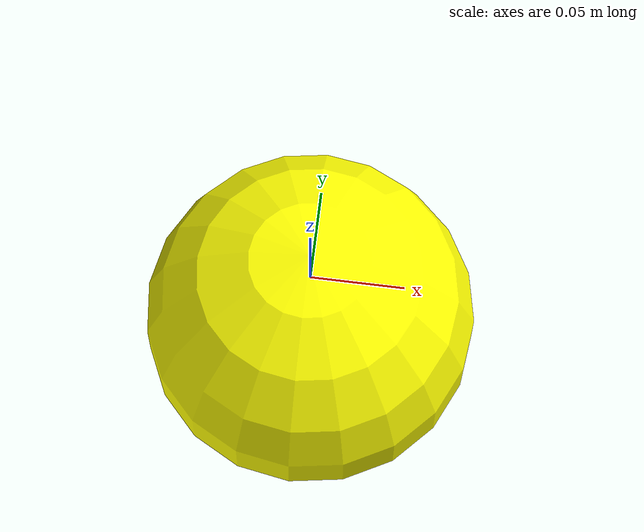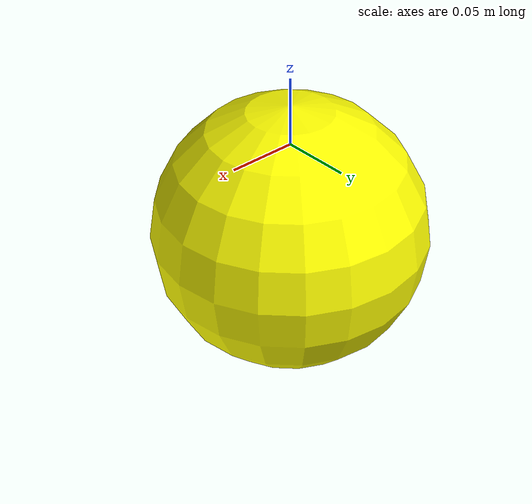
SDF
<?xml version="1.0" ?>
<sdf version="1.5">
  <model name="box">
    <link name="bumps">
    <inertial>
        <mass>0.1</mass>
    </inertial>
    <visual name="visual">
        <pose>0 0 -0.07 0 0 0</pose>
        <geometry>
            <sphere>
                <radius>0.1</radius>
            </sphere>
        </geometry>
        <material>
            <diffuse>1 1 0 1</diffuse>
        </material>
      </visual>
      <collision name="collision">
        <pose>0 0 -0.07 0 0 0</pose>
        <geometry>
            <sphere>
                <radius>0.1</radius>
            </sphere>
        </geometry>
      </collision>
    </link>
  </model>
</sdf>
